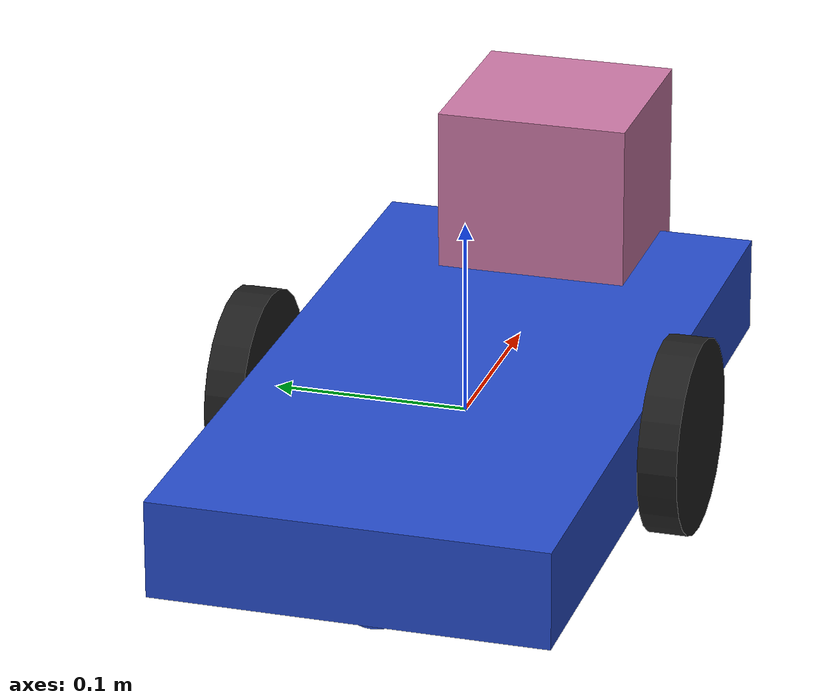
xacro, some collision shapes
<?xml version='1.0'?>

<robot name="my_robot" xmlns:xacro="http://www.ros.org/wiki/xacro">

  <link name="robot_footprint"></link>

  <joint name="robot_footprint_joint" type="fixed">
    <origin xyz="0 0 0" rpy="0 0 0" />
    <parent link="robot_footprint"/>
    <child link="chassis" />
  </joint>

  <link name='chassis'>
    <pose>0 0 0.1 0 0 0</pose>

    <inertial>
      <mass value="15.0"/>
      <origin xyz="0.0 0 0" rpy=" 0 0 0"/>
      <inertia
          ixx="0.1" ixy="0" ixz="0"
          iyy="0.1" iyz="0"
          izz="0.1"
      />
    </inertial>

    <collision name='collision'>
      <origin xyz="0 0 0" rpy=" 0 0 0"/>
      <geometry>
        <box size=".4 .2 .05"/>
      </geometry>
    </collision>

    <visual name='chassis_visual'>
      <origin xyz="0 0 0" rpy=" 0 0 0"/>
      <geometry>
        <box size=".4 .2 .05"/>
      </geometry>
    </visual>

    <collision name='back_caster_collision'>
      <origin xyz="-0.15 0 -0.03" rpy=" 0 0 0"/>
      <geometry>
        <sphere radius="0.0199"/>
      </geometry>
    </collision>

    <visual name='back_caster_visual'>
      <origin xyz="-0.15 0 -0.03" rpy=" 0 0 0"/>
      <geometry>
        <sphere radius="0.02"/>
      </geometry>
    </visual>

    <collision name='front_caster_collision'>
      <origin xyz="0.15 0 -0.03" rpy=" 0 0 0"/>
      <geometry>
        <sphere radius="0.0199"/>
      </geometry>
    </collision>

    <visual name='front_caster_visual'>
      <origin xyz="0.15 0 -0.03" rpy=" 0 0 0"/>
      <geometry>
        <sphere radius="0.02"/>
      </geometry>
    </visual>

  </link>

  <link name="left_wheel">
    <inertial>
      <origin xyz="0 0 0" rpy="0 1.5707 1.5707"/>
      <mass value="5"/>
      <inertia
          ixx="0.1" ixy="0" ixz="0"
          iyy="0.1" iyz="0"
          izz="0.1"
      />
    </inertial>
    <collision>
      <origin xyz="0 0 0" rpy="0 1.5707 1.5707"/>
    <geometry>
      <cylinder radius="0.05" length="0.02"/>
    </geometry>
    </collision>
    <visual>
      <origin xyz="0 0 0" rpy="0 1.5707 1.5707"/>
    <geometry>
      <cylinder radius="0.05" length="0.02"/>
    </geometry>
    </visual>
  </link>

  <link name="right_wheel">
    <inertial>
      <origin xyz="0 0 0" rpy="0 1.5707 1.5707"/>
      <mass value="5"/>
      <inertia
          ixx="0.1" ixy="0" ixz="0"
          iyy="0.1" iyz="0"
          izz="0.1"
      />
    </inertial>
    <collision>
      <origin xyz="0 0 0" rpy="0 1.5707 1.5707"/>
    <geometry>
      <cylinder radius="0.05" length="0.02"/>
    </geometry>
    </collision>
    <visual>
      <origin xyz="0 0 0" rpy="0 1.5707 1.5707"/>
    <geometry>
      <cylinder radius="0.05" length="0.02"/>
    </geometry>
    </visual>
  </link>

  <joint type="continuous" name="left_wheel_hinge">
    <origin xyz="0 0.112 0" rpy="0 0 0"/>
    <child link="left_wheel"/>
    <parent link="chassis"/>
    <axis xyz="0 1 0" rpy="0 0 0"/>
    <limit effort="10000" velocity="1000"/>
    <dynamics damping="1.0" friction="1.0"/>
  </joint>

  <joint type="continuous" name="right_wheel_hinge">
    <origin xyz="0 -0.112 0" rpy="0 0 0"/>
    <child link="right_wheel"/>
    <parent link="chassis"/>
    <axis xyz="0 1 0" rpy="0 0 0"/>
    <limit effort="10000" velocity="1000"/>
    <dynamics damping="1.0" friction="1.0"/>
  </joint>

  <link name="camera">
    <visual>
      <origin xyz="0 0 0" rpy="0 0 0"/>
      <geometry>
        <box size="0.05 0.04 0.04"/>
      </geometry>
    </visual>
    <collision>
      <origin xyz="0 0 0" rpy="0 0 0"/>
      <geometry>
        <box size="0.05 0.05 0.05"/>
      </geometry>
    </collision>
    <inertial>
      <origin xyz="0 0 0" rpy="0 0 0"/>
      <mass value="0.1"/>
      <inertia
        ixx="1e-6" ixy="0" ixz="0" iyy="1e-6" iyz="0" izz="1e-6"
      />
    </inertial>
  </link>

  <joint name="camera_joint" type="fixed">
    <axis xyz="1 0 1"/>
    <origin xyz="0.2 0 0" rpy="0 0 0"/>
    <parent link="chassis"/>
    <child link="camera"/>
  </joint>

  <joint name="camera_optical_joint" type="fixed">
    <origin xyz="0 0 0" rpy="-1.5707 0 -1.5707"/>
    <parent link="camera"/>
    <child link="camera_link_optical"/>
  </joint>

  <link name="camera_link_optical">
    <visual>
      <origin xyz="0 0 0" rpy="0 0 0"/>
      <geometry>
        <box size="0.05 0.04 0.04"/>
      </geometry>
    </visual>
    <collision>
      <origin xyz="0 0 0" rpy="0 0 0"/>
      <geometry>
        <box size="0.05 0.05 0.05"/>
      </geometry>
    </collision>
    <inertial>
      <origin xyz="0 0 0" rpy="0 0 0"/>
      <mass value="0.1"/>
      <inertia
        ixx="1e-6" ixy="0" ixz="0" iyy="1e-6" iyz="0" izz="1e-6"
      />
    </inertial>
  </link>

  <link name="hokuyo">
    <visual>
      <origin xyz="0 0 0" rpy="0 0 0"/>
      <geometry>
        <mesh filename="package://my_robot/meshes/hokuyo.dae"/>
      </geometry>
    </visual>
    <collision>
      <origin xyz="0 0 0" rpy="0 0 0"/>
      <geometry>
        <box size="0.1 0.1 0.1"/>
      </geometry>
    </collision>
    <inertial>
      <origin xyz="0 0 0" rpy="0 0 0"/>
      <mass value="0.1"/>
      <inertia
        ixx="1e-6" ixy="0" ixz="0" iyy="1e-6" iyz="0" izz="1e-6"
      />
    </inertial>
  </link>

  <joint name="hokuyo_joint" type="fixed">
    <axis xyz="0 1 0"/>
    <origin xyz="0.17 0 0.06" rpy="0 0 0"/>
    <parent link="chassis"/>
    <child link="hokuyo"/>
  </joint>
  <gazebo reference="chassis">
    <material>Gazebo/Blue</material>
  </gazebo>

  <gazebo reference="left_wheel">
    <material>Gazebo/FlatBlack</material>
  </gazebo>

  <gazebo reference="right_wheel">
    <material>Gazebo/FlatBlack</material>
  </gazebo>
  <xacro:include filename="$(find my_robot)/urdf/my_robot.gazebo" />
</robot>
